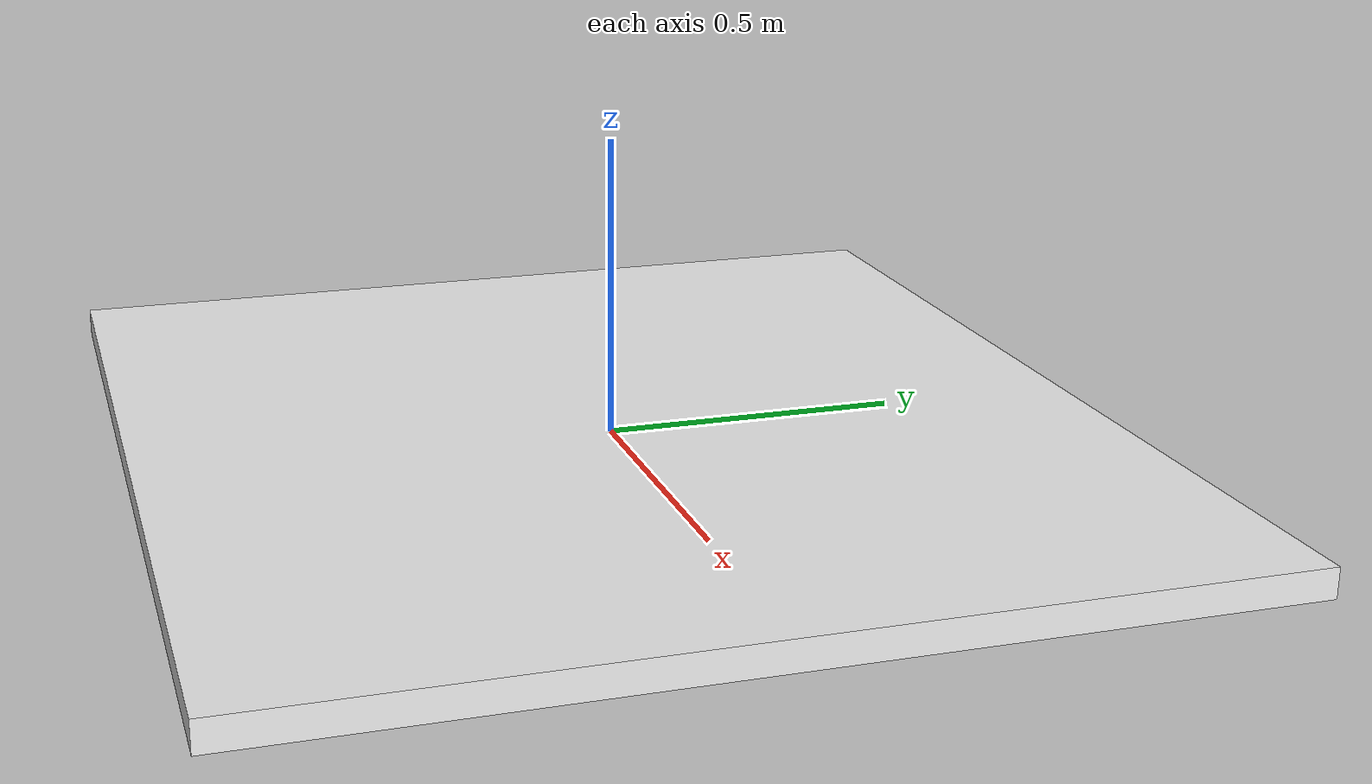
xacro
<?xml version="1.0"?>
<robot xmlns:xacro="http://www.ros.org/wiki/xacro" name="action_table" >
  <xacro:property name="table_xlength" value="1.801" />
  <xacro:property name="table_ylength" value="1.602" />
  <xacro:property name="table_zlength" value="0.05" />
  <link name="action_table">

    <!-- rosrun gazebo_ros spawn_model -file $(rospack find ur5_single_arm_tufts)/urdf/objects/table.urdf -urdf -x 0.5 -y -0 -z 0.75 -model table -->

    <inertial>
      <origin xyz="0 0 0" rpy="0 0 0" />
      <mass value="1"/>
      <inertia
        ixx="0.07" ixy="0.0" ixz="0.0"
        iyy="0.40" iyz="0.0"
        izz="0.33"/>
    </inertial>

    <visual>
      <origin xyz="0 0 0" rpy="0 0 0" />
      <geometry>
        <box size="${table_xlength} ${table_ylength} ${table_zlength}"/>
      </geometry>
    </visual>

    <collision>
      <origin xyz="0 0 0" rpy="0 0 0" />
      <geometry>
        <box size="${table_xlength} ${table_ylength} ${table_zlength}"/>
      </geometry>
    </collision>

  </link>

  <gazebo reference="action_table">
    <material>Gazebo/White</material>
    <static>True</static>
  </gazebo>

</robot>
